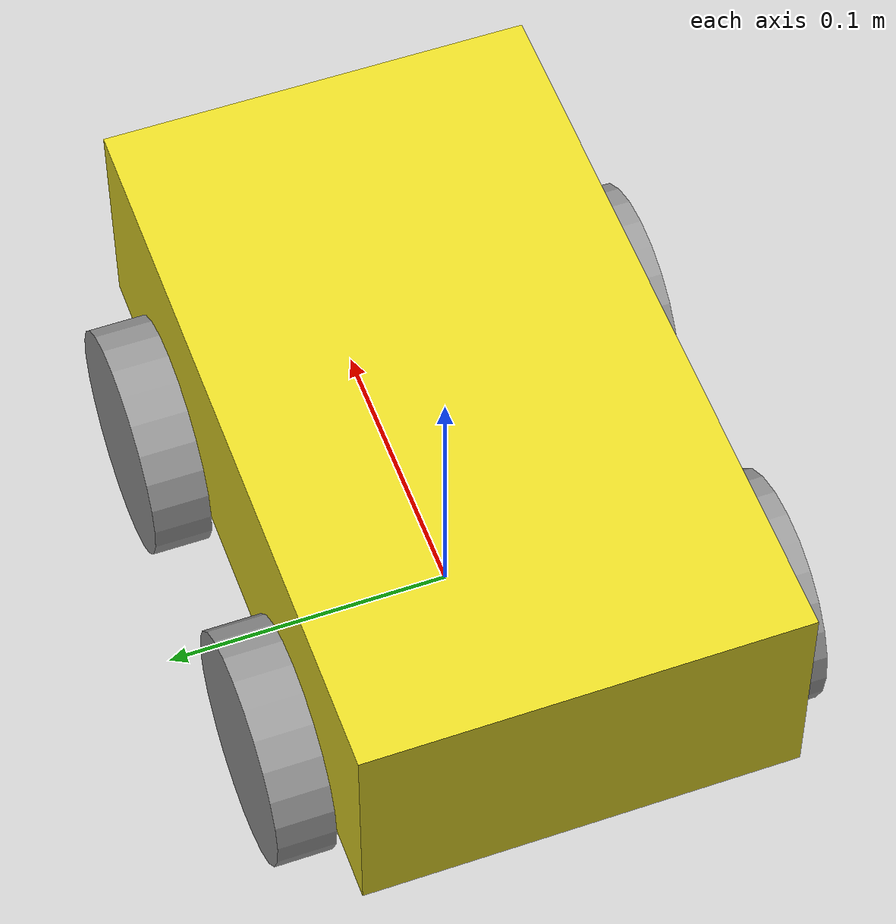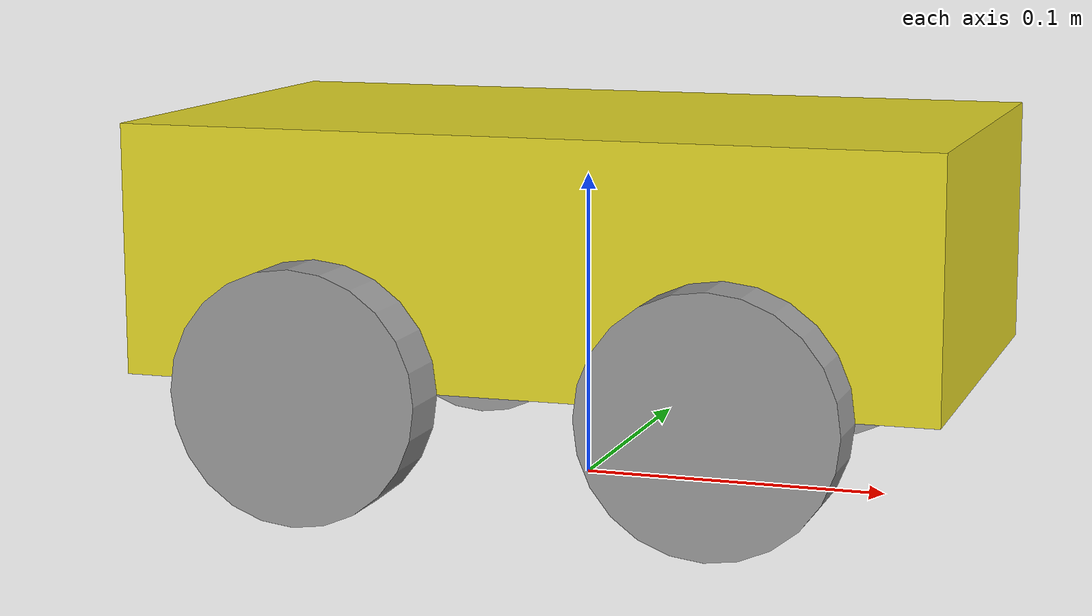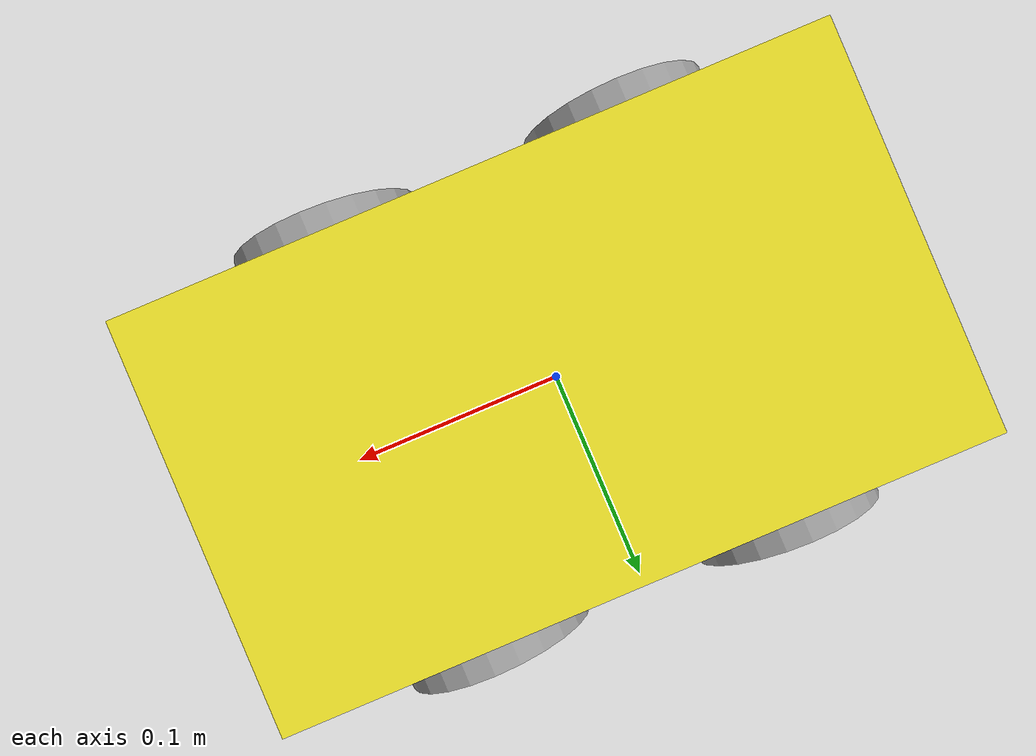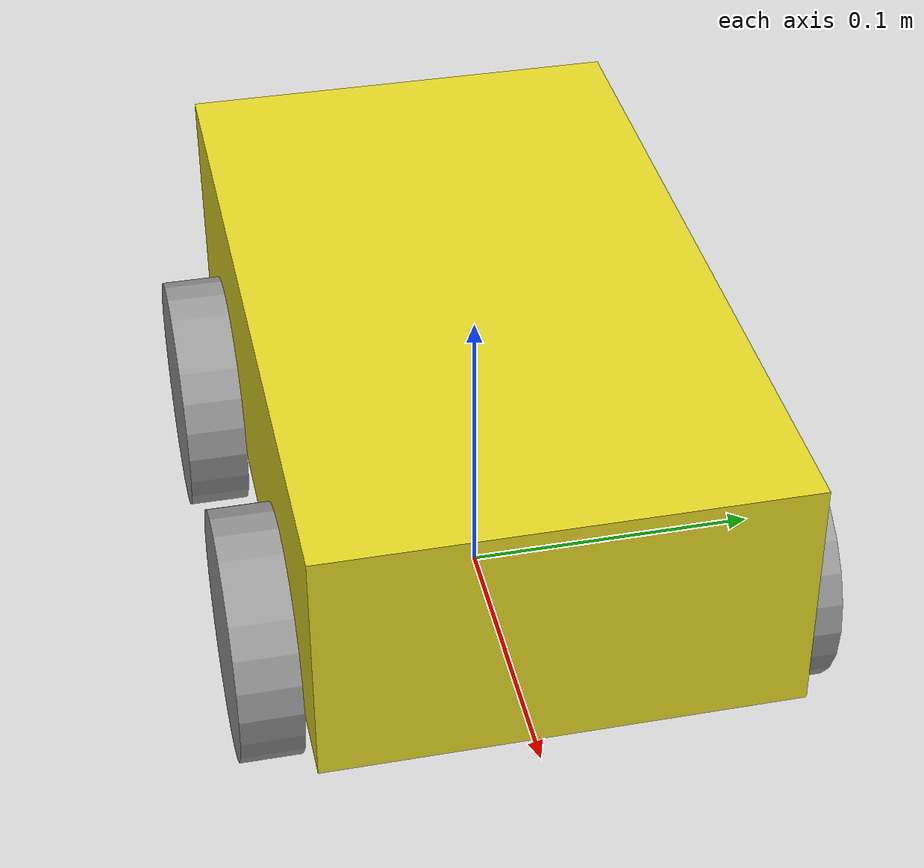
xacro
<?xml version="1.0"?>
<robot xmlns:xacro="http://www.ros.org/wiki/xacro">

    <xacro:property name="base_length" value="0.26" />
    <xacro:property name="base_width" value="0.15" />
    <xacro:property name="base_height" value="0.08" />
    <xacro:property name="wheel_radius" value="0.04" />
    <xacro:property name="wheel_length" value="0.02" />

    <link name="base_footprint" />
    <!-- collision and inertia box close to floor for lateral movements -->
    <link name="base_link">
        <visual>
            <geometry>
                <box size="${base_length} ${base_width} ${base_height}" />
            </geometry>
            <origin xyz="0 0 ${base_height / 2.0}" rpy="0 0 0" />
            <material name="yellow" />
        </visual>
        <collision>
            <geometry>
                <box size="${base_length} ${base_width} ${base_height}" />
            </geometry>
            <origin xyz="0 0 0.0" rpy="0 0 0" />
        </collision>
        <xacro:box_inertia m="4.0" l="${2*base_length}" w="${2*base_width}" h="${2*base_height}"
                           xyz="0 0 0.0" rpy="0 0 0" />
    </link>

    <xacro:macro name="wheel_link" params="prefix">
        <link name="${prefix}_wheel_link">
            <visual>
                <geometry>
                    <cylinder radius="${wheel_radius}" length="${wheel_length}" />
                </geometry>
                <origin xyz="0 0 0" rpy="${pi / 2.0} 0 0" />
                <material name="grey" />
            </visual>
            <collision>
                <geometry>
                    <cylinder radius="${wheel_radius}" length="${wheel_length}" />
                </geometry>
                <origin xyz="0 0 0" rpy="${pi / 2.0} 0 0" />
            </collision>
            <xacro:cylinder_inertia m="0.2" r="${2*wheel_radius}" h="${2*wheel_length}"
                                    xyz="0 0 0" rpy="${pi / 2.0} 0 0" />
        </link>
    </xacro:macro>

    <xacro:wheel_link prefix="lower_right" />
    <xacro:wheel_link prefix="lower_left" />
    <xacro:wheel_link prefix="upper_right" />
    <xacro:wheel_link prefix="upper_left" />

    <joint name="base_joint" type="fixed">
        <parent link="base_footprint" />
        <child link="base_link" />
        <origin xyz="0 0 ${wheel_radius}" rpy="0 0 0"/>
    </joint>

    <joint name="lower_right_wheel_joint" type="continuous">
        <parent link="base_link" />
        <child link="lower_right_wheel_link" />
        <origin xyz="${-base_length / 4.0} ${-(base_width + wheel_length) / 2.0} 0" rpy="0 0 0" />
        <axis xyz="0 1 0" />
    </joint>

    <joint name="lower_left_wheel_joint" type="continuous">
        <parent link="base_link" />
        <child link="lower_left_wheel_link" />
        <origin xyz="${-base_length / 4.0} ${(base_width + wheel_length) / 2.0} 0" rpy="0 0 0" />
        <axis xyz="0 1 0" />
    </joint>

    <joint name="upper_right_wheel_joint" type="continuous">
        <parent link="base_link" />
        <child link="upper_right_wheel_link" />
        <origin xyz="${base_length / 4.0} ${-(base_width + wheel_length) / 2.0} 0" rpy="0 0 0" />
        <axis xyz="0 1 0" />
    </joint>

    <joint name="upper_left_wheel_joint" type="continuous">
        <parent link="base_link" />
        <child link="upper_left_wheel_link" />
        <origin xyz="${base_length / 4.0} ${(base_width + wheel_length) / 2.0} 0" rpy="0 0 0" />
        <axis xyz="0 1 0" />
    </joint>

</robot>
